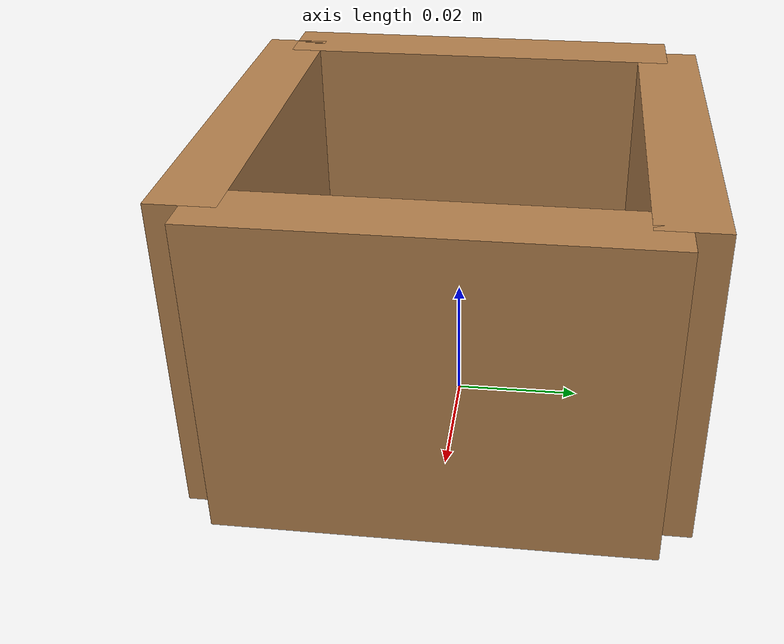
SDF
<?xml version="1.0" ?>
<sdf version="1.6">
  <model name="cube_support">
    <static>true</static>

    <link name="frame_link">

      <!-- Paretina posteriore -->
      <collision name="wall_back_collision">
        <geometry>
          <box>
            <size>0.065 0.01 0.05</size>
          </box>
        </geometry>
        <pose>0 0.0325 0.025 0 0 0</pose>
      </collision>
      <visual name="wall_back_visual">
        <geometry>
          <box>
            <size>0.065 0.01 0.05</size>
          </box>
        </geometry>
        <pose>0 0.0325 0.025 0 0 0</pose>
        <material>
          <script>
            <uri>file://media/materials/scripts/gazebo.material</uri>
            <name>Gazebo/Wood</name>
          </script>
        </material>
      </visual>

      <!-- Paretina anteriore -->
      <collision name="wall_front_collision">
        <geometry>
          <box>
            <size>0.065 0.01 0.05</size>
          </box>
        </geometry>
        <pose>0 -0.0325 0.025 0 0 0</pose>
      </collision>
      <visual name="wall_front_visual">
        <geometry>
          <box>
            <size>0.065 0.01 0.05</size>
          </box>
        </geometry>
        <pose>0 -0.0325 0.025 0 0 0</pose>
        <material>
          <script>
            <uri>file://media/materials/scripts/gazebo.material</uri>
            <name>Gazebo/Wood</name>
          </script>
        </material>
      </visual>

      <!-- Paretina sinistra -->
      <collision name="wall_left_collision">
        <geometry>
          <box>
            <size>0.01 0.065 0.05</size>
          </box>
        </geometry>
        <pose>-0.0325 0 0.025 0 0 0</pose>
      </collision>
      <visual name="wall_left_visual">
        <geometry>
          <box>
            <size>0.01 0.065 0.05</size>
          </box>
        </geometry>
        <pose>-0.0325 0 0.025 0 0 0</pose>
        <material>
          <script>
            <uri>file://media/materials/scripts/gazebo.material</uri>
            <name>Gazebo/Wood</name>
          </script>
        </material>
      </visual>

      <!-- Paretina destra -->
      <collision name="wall_right_collision">
        <geometry>
          <box>
            <size>0.01 0.065 0.05</size>
          </box>
        </geometry>
        <pose>0.0325 0 0.025 0 0 0</pose>
      </collision>
      <visual name="wall_right_visual">
        <geometry>
          <box>
            <size>0.01 0.065 0.05</size>
          </box>
        </geometry>
        <pose>0.0325 0 0.025 0 0 0</pose>
        <material>
          <script>
            <uri>file://media/materials/scripts/gazebo.material</uri>
            <name>Gazebo/Wood</name>
          </script>
        </material>
      </visual>

    </link>
  </model>
</sdf>
